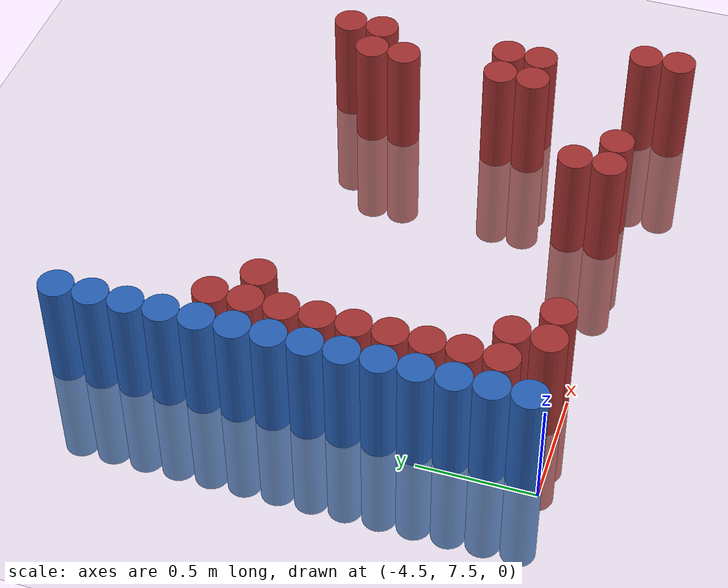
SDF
<sdf version="1.6">
 <world name="default">
  <model name="ground_plane">
   <static>1</static>
   <link name="link">
    <collision name="collision">
     <geometry><plane><normal>0 0 1</normal><size>100 100</size></plane></geometry>
     <surface><friction><ode><mu>100</mu><mu2>50</mu2></ode></friction></surface>
    </collision>
    <visual name="visual">
     <cast_shadows>0</cast_shadows>
     <geometry><plane><normal>0 0 1</normal><size>100 100</size></plane></geometry>
     <material>
      <script><uri>file://media/materials/scripts/gazebo.material</uri><name>Gazebo/Grey</name></script>
     </material>
    </visual>
   </link>
  </model>
  <model name="unit_cylinder_112">
   <static>1</static>
   <pose>-4.425000 7.575000 0.000000 0.000000 0.000000 0.000000</pose>
   <link name="link">
    <inertial>
     <mass>1</mass>
     <inertia><ixx>0.145833</ixx><ixy>0</ixy><ixz>0</ixz><iyy>0.145833</iyy><iyz>0</iyz><izz>0.125</izz></inertia>
    </inertial>
    <collision name="collision">
     <geometry><cylinder><radius>0.075000</radius><length>1</length></cylinder></geometry>
    </collision>
    <visual name="visual">
     <geometry><cylinder><radius>0.075000</radius><length>1</length></cylinder></geometry>
     <material>
      <ambient>0.152000 0.379000 0.720000 1</ambient>
      <diffuse>0.152000 0.379000 0.720000 1</diffuse>
     </material>
     <material>
      <script><name>Gazebo/Grey</name><uri>file://media/materials/scripts/gazebo.material</uri></script>
     </material>
    </visual>
    <sensor name="sensor_contact" type="contact"><contact><collision>collision</collision></contact></sensor>
   </link>
   <plugin filename="gz-sim-touchplugin-system" name="gz::sim::systems::TouchPlugin">
    <target>robot</target>
    <namespace>robot</namespace>
    <time>0.001</time>
    <enabled>true</enabled>
   </plugin>
  </model>
  <model name="unit_cylinder_113">
   <static>1</static>
   <pose>-4.425000 7.725000 0.000000 0.000000 0.000000 0.000000</pose>
   <link name="link">
    <inertial>
     <mass>1</mass>
     <inertia><ixx>0.145833</ixx><ixy>0</ixy><ixz>0</ixz><iyy>0.145833</iyy><iyz>0</iyz><izz>0.125</izz></inertia>
    </inertial>
    <collision name="collision">
     <geometry><cylinder><radius>0.075000</radius><length>1</length></cylinder></geometry>
    </collision>
    <visual name="visual">
     <geometry><cylinder><radius>0.075000</radius><length>1</length></cylinder></geometry>
     <material>
      <ambient>0.152000 0.379000 0.720000 1</ambient>
      <diffuse>0.152000 0.379000 0.720000 1</diffuse>
     </material>
     <material>
      <script><name>Gazebo/Grey</name><uri>file://media/materials/scripts/gazebo.material</uri></script>
     </material>
    </visual>
    <sensor name="sensor_contact" type="contact"><contact><collision>collision</collision></contact></sensor>
   </link>
   <plugin filename="gz-sim-touchplugin-system" name="gz::sim::systems::TouchPlugin">
    <target>robot</target>
    <namespace>robot</namespace>
    <time>0.001</time>
    <enabled>true</enabled>
   </plugin>
  </model>
  <model name="unit_cylinder_114">
   <static>1</static>
   <pose>-4.425000 7.875000 0.000000 0.000000 0.000000 0.000000</pose>
   <link name="link">
    <inertial>
     <mass>1</mass>
     <inertia><ixx>0.145833</ixx><ixy>0</ixy><ixz>0</ixz><iyy>0.145833</iyy><iyz>0</iyz><izz>0.125</izz></inertia>
    </inertial>
    <collision name="collision">
     <geometry><cylinder><radius>0.075000</radius><length>1</length></cylinder></geometry>
    </collision>
    <visual name="visual">
     <geometry><cylinder><radius>0.075000</radius><length>1</length></cylinder></geometry>
     <material>
      <ambient>0.152000 0.379000 0.720000 1</ambient>
      <diffuse>0.152000 0.379000 0.720000 1</diffuse>
     </material>
     <material>
      <script><name>Gazebo/Grey</name><uri>file://media/materials/scripts/gazebo.material</uri></script>
     </material>
    </visual>
    <sensor name="sensor_contact" type="contact"><contact><collision>collision</collision></contact></sensor>
   </link>
   <plugin filename="gz-sim-touchplugin-system" name="gz::sim::systems::TouchPlugin">
    <target>robot</target>
    <namespace>robot</namespace>
    <time>0.001</time>
    <enabled>true</enabled>
   </plugin>
  </model>
  <model name="unit_cylinder_115">
   <static>1</static>
   <pose>-4.425000 8.025000 0.000000 0.000000 0.000000 0.000000</pose>
   <link name="link">
    <inertial>
     <mass>1</mass>
     <inertia><ixx>0.145833</ixx><ixy>0</ixy><ixz>0</ixz><iyy>0.145833</iyy><iyz>0</iyz><izz>0.125</izz></inertia>
    </inertial>
    <collision name="collision">
     <geometry><cylinder><radius>0.075000</radius><length>1</length></cylinder></geometry>
    </collision>
    <visual name="visual">
     <geometry><cylinder><radius>0.075000</radius><length>1</length></cylinder></geometry>
     <material>
      <ambient>0.152000 0.379000 0.720000 1</ambient>
      <diffuse>0.152000 0.379000 0.720000 1</diffuse>
     </material>
     <material>
      <script><name>Gazebo/Grey</name><uri>file://media/materials/scripts/gazebo.material</uri></script>
     </material>
    </visual>
    <sensor name="sensor_contact" type="contact"><contact><collision>collision</collision></contact></sensor>
   </link>
   <plugin filename="gz-sim-touchplugin-system" name="gz::sim::systems::TouchPlugin">
    <target>robot</target>
    <namespace>robot</namespace>
    <time>0.001</time>
    <enabled>true</enabled>
   </plugin>
  </model>
  <model name="unit_cylinder_116">
   <static>1</static>
   <pose>-4.425000 8.175000 0.000000 0.000000 0.000000 0.000000</pose>
   <link name="link">
    <inertial>
     <mass>1</mass>
     <inertia><ixx>0.145833</ixx><ixy>0</ixy><ixz>0</ixz><iyy>0.145833</iyy><iyz>0</iyz><izz>0.125</izz></inertia>
    </inertial>
    <collision name="collision">
     <geometry><cylinder><radius>0.075000</radius><length>1</length></cylinder></geometry>
    </collision>
    <visual name="visual">
     <geometry><cylinder><radius>0.075000</radius><length>1</length></cylinder></geometry>
     <material>
      <ambient>0.152000 0.379000 0.720000 1</ambient>
      <diffuse>0.152000 0.379000 0.720000 1</diffuse>
     </material>
     <material>
      <script><name>Gazebo/Grey</name><uri>file://media/materials/scripts/gazebo.material</uri></script>
     </material>
    </visual>
    <sensor name="sensor_contact" type="contact"><contact><collision>collision</collision></contact></sensor>
   </link>
   <plugin filename="gz-sim-touchplugin-system" name="gz::sim::systems::TouchPlugin">
    <target>robot</target>
    <namespace>robot</namespace>
    <time>0.001</time>
    <enabled>true</enabled>
   </plugin>
  </model>
  <model name="unit_cylinder_117">
   <static>1</static>
   <pose>-4.425000 8.325000 0.000000 0.000000 0.000000 0.000000</pose>
   <link name="link">
    <inertial>
     <mass>1</mass>
     <inertia><ixx>0.145833</ixx><ixy>0</ixy><ixz>0</ixz><iyy>0.145833</iyy><iyz>0</iyz><izz>0.125</izz></inertia>
    </inertial>
    <collision name="collision">
     <geometry><cylinder><radius>0.075000</radius><length>1</length></cylinder></geometry>
    </collision>
    <visual name="visual">
     <geometry><cylinder><radius>0.075000</radius><length>1</length></cylinder></geometry>
     <material>
      <ambient>0.152000 0.379000 0.720000 1</ambient>
      <diffuse>0.152000 0.379000 0.720000 1</diffuse>
     </material>
     <material>
      <script><name>Gazebo/Grey</name><uri>file://media/materials/scripts/gazebo.material</uri></script>
     </material>
    </visual>
    <sensor name="sensor_contact" type="contact"><contact><collision>collision</collision></contact></sensor>
   </link>
   <plugin filename="gz-sim-touchplugin-system" name="gz::sim::systems::TouchPlugin">
    <target>robot</target>
    <namespace>robot</namespace>
    <time>0.001</time>
    <enabled>true</enabled>
   </plugin>
  </model>
  <model name="unit_cylinder_118">
   <static>1</static>
   <pose>-4.425000 8.475000 0.000000 0.000000 0.000000 0.000000</pose>
   <link name="link">
    <inertial>
     <mass>1</mass>
     <inertia><ixx>0.145833</ixx><ixy>0</ixy><ixz>0</ixz><iyy>0.145833</iyy><iyz>0</iyz><izz>0.125</izz></inertia>
    </inertial>
    <collision name="collision">
     <geometry><cylinder><radius>0.075000</radius><length>1</length></cylinder></geometry>
    </collision>
    <visual name="visual">
     <geometry><cylinder><radius>0.075000</radius><length>1</length></cylinder></geometry>
     <material>
      <ambient>0.152000 0.379000 0.720000 1</ambient>
      <diffuse>0.152000 0.379000 0.720000 1</diffuse>
     </material>
     <material>
      <script><name>Gazebo/Grey</name><uri>file://media/materials/scripts/gazebo.material</uri></script>
     </material>
    </visual>
    <sensor name="sensor_contact" type="contact"><contact><collision>collision</collision></contact></sensor>
   </link>
   <plugin filename="gz-sim-touchplugin-system" name="gz::sim::systems::TouchPlugin">
    <target>robot</target>
    <namespace>robot</namespace>
    <time>0.001</time>
    <enabled>true</enabled>
   </plugin>
  </model>
  <model name="unit_cylinder_119">
   <static>1</static>
   <pose>-4.425000 8.625000 0.000000 0.000000 0.000000 0.000000</pose>
   <link name="link">
    <inertial>
     <mass>1</mass>
     <inertia><ixx>0.145833</ixx><ixy>0</ixy><ixz>0</ixz><iyy>0.145833</iyy><iyz>0</iyz><izz>0.125</izz></inertia>
    </inertial>
    <collision name="collision">
     <geometry><cylinder><radius>0.075000</radius><length>1</length></cylinder></geometry>
    </collision>
    <visual name="visual">
     <geometry><cylinder><radius>0.075000</radius><length>1</length></cylinder></geometry>
     <material>
      <ambient>0.152000 0.379000 0.720000 1</ambient>
      <diffuse>0.152000 0.379000 0.720000 1</diffuse>
     </material>
     <material>
      <script><name>Gazebo/Grey</name><uri>file://media/materials/scripts/gazebo.material</uri></script>
     </material>
    </visual>
    <sensor name="sensor_contact" type="contact"><contact><collision>collision</collision></contact></sensor>
   </link>
   <plugin filename="gz-sim-touchplugin-system" name="gz::sim::systems::TouchPlugin">
    <target>robot</target>
    <namespace>robot</namespace>
    <time>0.001</time>
    <enabled>true</enabled>
   </plugin>
  </model>
  <model name="unit_cylinder_120">
   <static>1</static>
   <pose>-4.425000 8.775000 0.000000 0.000000 0.000000 0.000000</pose>
   <link name="link">
    <inertial>
     <mass>1</mass>
     <inertia><ixx>0.145833</ixx><ixy>0</ixy><ixz>0</ixz><iyy>0.145833</iyy><iyz>0</iyz><izz>0.125</izz></inertia>
    </inertial>
    <collision name="collision">
     <geometry><cylinder><radius>0.075000</radius><length>1</length></cylinder></geometry>
    </collision>
    <visual name="visual">
     <geometry><cylinder><radius>0.075000</radius><length>1</length></cylinder></geometry>
     <material>
      <ambient>0.152000 0.379000 0.720000 1</ambient>
      <diffuse>0.152000 0.379000 0.720000 1</diffuse>
     </material>
     <material>
      <script><name>Gazebo/Grey</name><uri>file://media/materials/scripts/gazebo.material</uri></script>
     </material>
    </visual>
    <sensor name="sensor_contact" type="contact"><contact><collision>collision</collision></contact></sensor>
   </link>
   <plugin filename="gz-sim-touchplugin-system" name="gz::sim::systems::TouchPlugin">
    <target>robot</target>
    <namespace>robot</namespace>
    <time>0.001</time>
    <enabled>true</enabled>
   </plugin>
  </model>
  <model name="unit_cylinder_121">
   <static>1</static>
   <pose>-4.425000 8.925000 0.000000 0.000000 0.000000 0.000000</pose>
   <link name="link">
    <inertial>
     <mass>1</mass>
     <inertia><ixx>0.145833</ixx><ixy>0</ixy><ixz>0</ixz><iyy>0.145833</iyy><iyz>0</iyz><izz>0.125</izz></inertia>
    </inertial>
    <collision name="collision">
     <geometry><cylinder><radius>0.075000</radius><length>1</length></cylinder></geometry>
    </collision>
    <visual name="visual">
     <geometry><cylinder><radius>0.075000</radius><length>1</length></cylinder></geometry>
     <material>
      <ambient>0.152000 0.379000 0.720000 1</ambient>
      <diffuse>0.152000 0.379000 0.720000 1</diffuse>
     </material>
     <material>
      <script><name>Gazebo/Grey</name><uri>file://media/materials/scripts/gazebo.material</uri></script>
     </material>
    </visual>
    <sensor name="sensor_contact" type="contact"><contact><collision>collision</collision></contact></sensor>
   </link>
   <plugin filename="gz-sim-touchplugin-system" name="gz::sim::systems::TouchPlugin">
    <target>robot</target>
    <namespace>robot</namespace>
    <time>0.001</time>
    <enabled>true</enabled>
   </plugin>
  </model>
  <model name="unit_cylinder_122">
   <static>1</static>
   <pose>-4.425000 9.075000 0.000000 0.000000 0.000000 0.000000</pose>
   <link name="link">
    <inertial>
     <mass>1</mass>
     <inertia><ixx>0.145833</ixx><ixy>0</ixy><ixz>0</ixz><iyy>0.145833</iyy><iyz>0</iyz><izz>0.125</izz></inertia>
    </inertial>
    <collision name="collision">
     <geometry><cylinder><radius>0.075000</radius><length>1</length></cylinder></geometry>
    </collision>
    <visual name="visual">
     <geometry><cylinder><radius>0.075000</radius><length>1</length></cylinder></geometry>
     <material>
      <ambient>0.152000 0.379000 0.720000 1</ambient>
      <diffuse>0.152000 0.379000 0.720000 1</diffuse>
     </material>
     <material>
      <script><name>Gazebo/Grey</name><uri>file://media/materials/scripts/gazebo.material</uri></script>
     </material>
    </visual>
    <sensor name="sensor_contact" type="contact"><contact><collision>collision</collision></contact></sensor>
   </link>
   <plugin filename="gz-sim-touchplugin-system" name="gz::sim::systems::TouchPlugin">
    <target>robot</target>
    <namespace>robot</namespace>
    <time>0.001</time>
    <enabled>true</enabled>
   </plugin>
  </model>
  <model name="unit_cylinder_123">
   <static>1</static>
   <pose>-4.425000 9.225000 0.000000 0.000000 0.000000 0.000000</pose>
   <link name="link">
    <inertial>
     <mass>1</mass>
     <inertia><ixx>0.145833</ixx><ixy>0</ixy><ixz>0</ixz><iyy>0.145833</iyy><iyz>0</iyz><izz>0.125</izz></inertia>
    </inertial>
    <collision name="collision">
     <geometry><cylinder><radius>0.075000</radius><length>1</length></cylinder></geometry>
    </collision>
    <visual name="visual">
     <geometry><cylinder><radius>0.075000</radius><length>1</length></cylinder></geometry>
     <material>
      <ambient>0.152000 0.379000 0.720000 1</ambient>
      <diffuse>0.152000 0.379000 0.720000 1</diffuse>
     </material>
     <material>
      <script><name>Gazebo/Grey</name><uri>file://media/materials/scripts/gazebo.material</uri></script>
     </material>
    </visual>
    <sensor name="sensor_contact" type="contact"><contact><collision>collision</collision></contact></sensor>
   </link>
   <plugin filename="gz-sim-touchplugin-system" name="gz::sim::systems::TouchPlugin">
    <target>robot</target>
    <namespace>robot</namespace>
    <time>0.001</time>
    <enabled>true</enabled>
   </plugin>
  </model>
  <model name="unit_cylinder_124">
   <static>1</static>
   <pose>-4.425000 9.375000 0.000000 0.000000 0.000000 0.000000</pose>
   <link name="link">
    <inertial>
     <mass>1</mass>
     <inertia><ixx>0.145833</ixx><ixy>0</ixy><ixz>0</ixz><iyy>0.145833</iyy><iyz>0</iyz><izz>0.125</izz></inertia>
    </inertial>
    <collision name="collision">
     <geometry><cylinder><radius>0.075000</radius><length>1</length></cylinder></geometry>
    </collision>
    <visual name="visual">
     <geometry><cylinder><radius>0.075000</radius><length>1</length></cylinder></geometry>
     <material>
      <ambient>0.152000 0.379000 0.720000 1</ambient>
      <diffuse>0.152000 0.379000 0.720000 1</diffuse>
     </material>
     <material>
      <script><name>Gazebo/Grey</name><uri>file://media/materials/scripts/gazebo.material</uri></script>
     </material>
    </visual>
    <sensor name="sensor_contact" type="contact"><contact><collision>collision</collision></contact></sensor>
   </link>
   <plugin filename="gz-sim-touchplugin-system" name="gz::sim::systems::TouchPlugin">
    <target>robot</target>
    <namespace>robot</namespace>
    <time>0.001</time>
    <enabled>true</enabled>
   </plugin>
  </model>
  <model name="unit_cylinder_125">
   <static>1</static>
   <pose>-4.425000 9.525000 0.000000 0.000000 0.000000 0.000000</pose>
   <link name="link">
    <inertial>
     <mass>1</mass>
     <inertia><ixx>0.145833</ixx><ixy>0</ixy><ixz>0</ixz><iyy>0.145833</iyy><iyz>0</iyz><izz>0.125</izz></inertia>
    </inertial>
    <collision name="collision">
     <geometry><cylinder><radius>0.075000</radius><length>1</length></cylinder></geometry>
    </collision>
    <visual name="visual">
     <geometry><cylinder><radius>0.075000</radius><length>1</length></cylinder></geometry>
     <material>
      <ambient>0.152000 0.379000 0.720000 1</ambient>
      <diffuse>0.152000 0.379000 0.720000 1</diffuse>
     </material>
     <material>
      <script><name>Gazebo/Grey</name><uri>file://media/materials/scripts/gazebo.material</uri></script>
     </material>
    </visual>
    <sensor name="sensor_contact" type="contact"><contact><collision>collision</collision></contact></sensor>
   </link>
   <plugin filename="gz-sim-touchplugin-system" name="gz::sim::systems::TouchPlugin">
    <target>robot</target>
    <namespace>robot</namespace>
    <time>0.001</time>
    <enabled>true</enabled>
   </plugin>
  </model>
  <model name="unit_cylinder_133">
   <static>1</static>
   <pose>-4.275000 7.725000 0.000000 0.000000 0.000000 0.000000</pose>
   <link name="link">
    <inertial>
     <mass>1</mass>
     <inertia><ixx>0.145833</ixx><ixy>0</ixy><ixz>0</ixz><iyy>0.145833</iyy><iyz>0</iyz><izz>0.125</izz></inertia>
    </inertial>
    <collision name="collision">
     <geometry><cylinder><radius>0.075000</radius><length>1</length></cylinder></geometry>
    </collision>
    <visual name="visual">
     <geometry><cylinder><radius>0.075000</radius><length>1</length></cylinder></geometry>
     <material>
      <ambient>0.648000 0.192000 0.192000 1</ambient>
      <diffuse>0.648000 0.192000 0.192000 1</diffuse>
     </material>
     <material>
      <script><name>Gazebo/Grey</name><uri>file://media/materials/scripts/gazebo.material</uri></script>
     </material>
    </visual>
    <sensor name="sensor_contact" type="contact"><contact><collision>collision</collision></contact></sensor>
   </link>
   <plugin filename="gz-sim-touchplugin-system" name="gz::sim::systems::TouchPlugin">
    <target>robot</target>
    <namespace>robot</namespace>
    <time>0.001</time>
    <enabled>true</enabled>
   </plugin>
  </model>
  <model name="unit_cylinder_134">
   <static>1</static>
   <pose>-4.275000 7.875000 0.000000 0.000000 0.000000 0.000000</pose>
   <link name="link">
    <inertial>
     <mass>1</mass>
     <inertia><ixx>0.145833</ixx><ixy>0</ixy><ixz>0</ixz><iyy>0.145833</iyy><iyz>0</iyz><izz>0.125</izz></inertia>
    </inertial>
    <collision name="collision">
     <geometry><cylinder><radius>0.075000</radius><length>1</length></cylinder></geometry>
    </collision>
    <visual name="visual">
     <geometry><cylinder><radius>0.075000</radius><length>1</length></cylinder></geometry>
     <material>
      <ambient>0.648000 0.192000 0.192000 1</ambient>
      <diffuse>0.648000 0.192000 0.192000 1</diffuse>
     </material>
     <material>
      <script><name>Gazebo/Grey</name><uri>file://media/materials/scripts/gazebo.material</uri></script>
     </material>
    </visual>
    <sensor name="sensor_contact" type="contact"><contact><collision>collision</collision></contact></sensor>
   </link>
   <plugin filename="gz-sim-touchplugin-system" name="gz::sim::systems::TouchPlugin">
    <target>robot</target>
    <namespace>robot</namespace>
    <time>0.001</time>
    <enabled>true</enabled>
   </plugin>
  </model>
  <model name="unit_cylinder_135">
   <static>1</static>
   <pose>-4.275000 8.025000 0.000000 0.000000 0.000000 0.000000</pose>
   <link name="link">
    <inertial>
     <mass>1</mass>
     <inertia><ixx>0.145833</ixx><ixy>0</ixy><ixz>0</ixz><iyy>0.145833</iyy><iyz>0</iyz><izz>0.125</izz></inertia>
    </inertial>
    <collision name="collision">
     <geometry><cylinder><radius>0.075000</radius><length>1</length></cylinder></geometry>
    </collision>
    <visual name="visual">
     <geometry><cylinder><radius>0.075000</radius><length>1</length></cylinder></geometry>
     <material>
      <ambient>0.648000 0.192000 0.192000 1</ambient>
      <diffuse>0.648000 0.192000 0.192000 1</diffuse>
     </material>
     <material>
      <script><name>Gazebo/Grey</name><uri>file://media/materials/scripts/gazebo.material</uri></script>
     </material>
    </visual>
    <sensor name="sensor_contact" type="contact"><contact><collision>collision</collision></contact></sensor>
   </link>
   <plugin filename="gz-sim-touchplugin-system" name="gz::sim::systems::TouchPlugin">
    <target>robot</target>
    <namespace>robot</namespace>
    <time>0.001</time>
    <enabled>true</enabled>
   </plugin>
  </model>
  <model name="unit_cylinder_136">
   <static>1</static>
   <pose>-4.275000 8.175000 0.000000 0.000000 0.000000 0.000000</pose>
   <link name="link">
    <inertial>
     <mass>1</mass>
     <inertia><ixx>0.145833</ixx><ixy>0</ixy><ixz>0</ixz><iyy>0.145833</iyy><iyz>0</iyz><izz>0.125</izz></inertia>
    </inertial>
    <collision name="collision">
     <geometry><cylinder><radius>0.075000</radius><length>1</length></cylinder></geometry>
    </collision>
    <visual name="visual">
     <geometry><cylinder><radius>0.075000</radius><length>1</length></cylinder></geometry>
     <material>
      <ambient>0.648000 0.192000 0.192000 1</ambient>
      <diffuse>0.648000 0.192000 0.192000 1</diffuse>
     </material>
     <material>
      <script><name>Gazebo/Grey</name><uri>file://media/materials/scripts/gazebo.material</uri></script>
     </material>
    </visual>
    <sensor name="sensor_contact" type="contact"><contact><collision>collision</collision></contact></sensor>
   </link>
   <plugin filename="gz-sim-touchplugin-system" name="gz::sim::systems::TouchPlugin">
    <target>robot</target>
    <namespace>robot</namespace>
    <time>0.001</time>
    <enabled>true</enabled>
   </plugin>
  </model>
  <model name="unit_cylinder_137">
   <static>1</static>
   <pose>-4.275000 8.325000 0.000000 0.000000 0.000000 0.000000</pose>
   <link name="link">
    <inertial>
     <mass>1</mass>
     <inertia><ixx>0.145833</ixx><ixy>0</ixy><ixz>0</ixz><iyy>0.145833</iyy><iyz>0</iyz><izz>0.125</izz></inertia>
    </inertial>
    <collision name="collision">
     <geometry><cylinder><radius>0.075000</radius><length>1</length></cylinder></geometry>
    </collision>
    <visual name="visual">
     <geometry><cylinder><radius>0.075000</radius><length>1</length></cylinder></geometry>
     <material>
      <ambient>0.648000 0.192000 0.192000 1</ambient>
      <diffuse>0.648000 0.192000 0.192000 1</diffuse>
     </material>
     <material>
      <script><name>Gazebo/Grey</name><uri>file://media/materials/scripts/gazebo.material</uri></script>
     </material>
    </visual>
    <sensor name="sensor_contact" type="contact"><contact><collision>collision</collision></contact></sensor>
   </link>
   <plugin filename="gz-sim-touchplugin-system" name="gz::sim::systems::TouchPlugin">
    <target>robot</target>
    <namespace>robot</namespace>
    <time>0.001</time>
    <enabled>true</enabled>
   </plugin>
  </model>
  <model name="unit_cylinder_138">
   <static>1</static>
   <pose>-4.275000 8.475000 0.000000 0.000000 0.000000 0.000000</pose>
   <link name="link">
    <inertial>
     <mass>1</mass>
     <inertia><ixx>0.145833</ixx><ixy>0</ixy><ixz>0</ixz><iyy>0.145833</iyy><iyz>0</iyz><izz>0.125</izz></inertia>
    </inertial>
    <collision name="collision">
     <geometry><cylinder><radius>0.075000</radius><length>1</length></cylinder></geometry>
    </collision>
    <visual name="visual">
     <geometry><cylinder><radius>0.075000</radius><length>1</length></cylinder></geometry>
     <material>
      <ambient>0.648000 0.192000 0.192000 1</ambient>
      <diffuse>0.648000 0.192000 0.192000 1</diffuse>
     </material>
     <material>
      <script><name>Gazebo/Grey</name><uri>file://media/materials/scripts/gazebo.material</uri></script>
     </material>
    </visual>
    <sensor name="sensor_contact" type="contact"><contact><collision>collision</collision></contact></sensor>
   </link>
   <plugin filename="gz-sim-touchplugin-system" name="gz::sim::systems::TouchPlugin">
    <target>robot</target>
    <namespace>robot</namespace>
    <time>0.001</time>
    <enabled>true</enabled>
   </plugin>
  </model>
  <model name="unit_cylinder_139">
   <static>1</static>
   <pose>-4.275000 8.625000 0.000000 0.000000 0.000000 0.000000</pose>
   <link name="link">
    <inertial>
     <mass>1</mass>
     <inertia><ixx>0.145833</ixx><ixy>0</ixy><ixz>0</ixz><iyy>0.145833</iyy><iyz>0</iyz><izz>0.125</izz></inertia>
    </inertial>
    <collision name="collision">
     <geometry><cylinder><radius>0.075000</radius><length>1</length></cylinder></geometry>
    </collision>
    <visual name="visual">
     <geometry><cylinder><radius>0.075000</radius><length>1</length></cylinder></geometry>
     <material>
      <ambient>0.648000 0.192000 0.192000 1</ambient>
      <diffuse>0.648000 0.192000 0.192000 1</diffuse>
     </material>
     <material>
      <script><name>Gazebo/Grey</name><uri>file://media/materials/scripts/gazebo.material</uri></script>
     </material>
    </visual>
    <sensor name="sensor_contact" type="contact"><contact><collision>collision</collision></contact></sensor>
   </link>
   <plugin filename="gz-sim-touchplugin-system" name="gz::sim::systems::TouchPlugin">
    <target>robot</target>
    <namespace>robot</namespace>
    <time>0.001</time>
    <enabled>true</enabled>
   </plugin>
  </model>
  <model name="unit_cylinder_140">
   <static>1</static>
   <pose>-4.275000 8.775000 0.000000 0.000000 0.000000 0.000000</pose>
   <link name="link">
    <inertial>
     <mass>1</mass>
     <inertia><ixx>0.145833</ixx><ixy>0</ixy><ixz>0</ixz><iyy>0.145833</iyy><iyz>0</iyz><izz>0.125</izz></inertia>
    </inertial>
    <collision name="collision">
     <geometry><cylinder><radius>0.075000</radius><length>1</length></cylinder></geometry>
    </collision>
    <visual name="visual">
     <geometry><cylinder><radius>0.075000</radius><length>1</length></cylinder></geometry>
     <material>
      <ambient>0.648000 0.192000 0.192000 1</ambient>
      <diffuse>0.648000 0.192000 0.192000 1</diffuse>
     </material>
     <material>
      <script><name>Gazebo/Grey</name><uri>file://media/materials/scripts/gazebo.material</uri></script>
     </material>
    </visual>
    <sensor name="sensor_contact" type="contact"><contact><collision>collision</collision></contact></sensor>
   </link>
   <plugin filename="gz-sim-touchplugin-system" name="gz::sim::systems::TouchPlugin">
    <target>robot</target>
    <namespace>robot</namespace>
    <time>0.001</time>
    <enabled>true</enabled>
   </plugin>
  </model>
  <model name="unit_cylinder_141">
   <static>1</static>
   <pose>-4.275000 8.925000 0.000000 0.000000 0.000000 0.000000</pose>
   <link name="link">
    <inertial>
     <mass>1</mass>
     <inertia><ixx>0.145833</ixx><ixy>0</ixy><ixz>0</ixz><iyy>0.145833</iyy><iyz>0</iyz><izz>0.125</izz></inertia>
    </inertial>
    <collision name="collision">
     <geometry><cylinder><radius>0.075000</radius><length>1</length></cylinder></geometry>
    </collision>
    <visual name="visual">
     <geometry><cylinder><radius>0.075000</radius><length>1</length></cylinder></geometry>
     <material>
      <ambient>0.648000 0.192000 0.192000 1</ambient>
      <diffuse>0.648000 0.192000 0.192000 1</diffuse>
     </material>
     <material>
      <script><name>Gazebo/Grey</name><uri>file://media/materials/scripts/gazebo.material</uri></script>
     </material>
    </visual>
    <sensor name="sensor_contact" type="contact"><contact><collision>collision</collision></contact></sensor>
   </link>
   <plugin filename="gz-sim-touchplugin-system" name="gz::sim::systems::TouchPlugin">
    <target>robot</target>
    <namespace>robot</namespace>
    <time>0.001</time>
    <enabled>true</enabled>
   </plugin>
  </model>
  <model name="unit_cylinder_149">
   <static>1</static>
   <pose>-4.125000 7.575000 0.000000 0.000000 0.000000 0.000000</pose>
   <link name="link">
    <inertial>
     <mass>1</mass>
     <inertia><ixx>0.145833</ixx><ixy>0</ixy><ixz>0</ixz><iyy>0.145833</iyy><iyz>0</iyz><izz>0.125</izz></inertia>
    </inertial>
    <collision name="collision">
     <geometry><cylinder><radius>0.075000</radius><length>1</length></cylinder></geometry>
    </collision>
    <visual name="visual">
     <geometry><cylinder><radius>0.075000</radius><length>1</length></cylinder></geometry>
     <material>
      <ambient>0.648000 0.192000 0.192000 1</ambient>
      <diffuse>0.648000 0.192000 0.192000 1</diffuse>
     </material>
     <material>
      <script><name>Gazebo/Grey</name><uri>file://media/materials/scripts/gazebo.material</uri></script>
     </material>
    </visual>
    <sensor name="sensor_contact" type="contact"><contact><collision>collision</collision></contact></sensor>
   </link>
   <plugin filename="gz-sim-touchplugin-system" name="gz::sim::systems::TouchPlugin">
    <target>robot</target>
    <namespace>robot</namespace>
    <time>0.001</time>
    <enabled>true</enabled>
   </plugin>
  </model>
  <model name="unit_cylinder_150">
   <static>1</static>
   <pose>-4.125000 7.725000 0.000000 0.000000 0.000000 0.000000</pose>
   <link name="link">
    <inertial>
     <mass>1</mass>
     <inertia><ixx>0.145833</ixx><ixy>0</ixy><ixz>0</ixz><iyy>0.145833</iyy><iyz>0</iyz><izz>0.125</izz></inertia>
    </inertial>
    <collision name="collision">
     <geometry><cylinder><radius>0.075000</radius><length>1</length></cylinder></geometry>
    </collision>
    <visual name="visual">
     <geometry><cylinder><radius>0.075000</radius><length>1</length></cylinder></geometry>
     <material>
      <ambient>0.648000 0.192000 0.192000 1</ambient>
      <diffuse>0.648000 0.192000 0.192000 1</diffuse>
     </material>
     <material>
      <script><name>Gazebo/Grey</name><uri>file://media/materials/scripts/gazebo.material</uri></script>
     </material>
    </visual>
    <sensor name="sensor_contact" type="contact"><contact><collision>collision</collision></contact></sensor>
   </link>
   <plugin filename="gz-sim-touchplugin-system" name="gz::sim::systems::TouchPlugin">
    <target>robot</target>
    <namespace>robot</namespace>
    <time>0.001</time>
    <enabled>true</enabled>
   </plugin>
  </model>
  <model name="unit_cylinder_151">
   <static>1</static>
   <pose>-4.125000 8.775000 0.000000 0.000000 0.000000 0.000000</pose>
   <link name="link">
    <inertial>
     <mass>1</mass>
     <inertia><ixx>0.145833</ixx><ixy>0</ixy><ixz>0</ixz><iyy>0.145833</iyy><iyz>0</iyz><izz>0.125</izz></inertia>
    </inertial>
    <collision name="collision">
     <geometry><cylinder><radius>0.075000</radius><length>1</length></cylinder></geometry>
    </collision>
    <visual name="visual">
     <geometry><cylinder><radius>0.075000</radius><length>1</length></cylinder></geometry>
     <material>
      <ambient>0.648000 0.192000 0.192000 1</ambient>
      <diffuse>0.648000 0.192000 0.192000 1</diffuse>
     </material>
     <material>
      <script><name>Gazebo/Grey</name><uri>file://media/materials/scripts/gazebo.material</uri></script>
     </material>
    </visual>
    <sensor name="sensor_contact" type="contact"><contact><collision>collision</collision></contact></sensor>
   </link>
   <plugin filename="gz-sim-touchplugin-system" name="gz::sim::systems::TouchPlugin">
    <target>robot</target>
    <namespace>robot</namespace>
    <time>0.001</time>
    <enabled>true</enabled>
   </plugin>
  </model>
  <model name="unit_cylinder_157">
   <static>1</static>
   <pose>-3.975000 7.575000 0.000000 0.000000 0.000000 0.000000</pose>
   <link name="link">
    <inertial>
     <mass>1</mass>
     <inertia><ixx>0.145833</ixx><ixy>0</ixy><ixz>0</ixz><iyy>0.145833</iyy><iyz>0</iyz><izz>0.125</izz></inertia>
    </inertial>
    <collision name="collision">
     <geometry><cylinder><radius>0.075000</radius><length>1</length></cylinder></geometry>
    </collision>
    <visual name="visual">
     <geometry><cylinder><radius>0.075000</radius><length>1</length></cylinder></geometry>
     <material>
      <ambient>0.648000 0.192000 0.192000 1</ambient>
      <diffuse>0.648000 0.192000 0.192000 1</diffuse>
     </material>
     <material>
      <script><name>Gazebo/Grey</name><uri>file://media/materials/scripts/gazebo.material</uri></script>
     </material>
    </visual>
    <sensor name="sensor_contact" type="contact"><contact><collision>collision</collision></contact></sensor>
   </link>
   <plugin filename="gz-sim-touchplugin-system" name="gz::sim::systems::TouchPlugin">
    <target>robot</target>
    <namespace>robot</namespace>
    <time>0.001</time>
    <enabled>true</enabled>
   </plugin>
  </model>
  <model name="unit_cylinder_174">
   <static>1</static>
   <pose>-3.075000 7.575000 0.000000 0.000000 0.000000 0.000000</pose>
   <link name="link">
    <inertial>
     <mass>1</mass>
     <inertia><ixx>0.145833</ixx><ixy>0</ixy><ixz>0</ixz><iyy>0.145833</iyy><iyz>0</iyz><izz>0.125</izz></inertia>
    </inertial>
    <collision name="collision">
     <geometry><cylinder><radius>0.075000</radius><length>1</length></cylinder></geometry>
    </collision>
    <visual name="visual">
     <geometry><cylinder><radius>0.075000</radius><length>1</length></cylinder></geometry>
     <material>
      <ambient>0.648000 0.192000 0.192000 1</ambient>
      <diffuse>0.648000 0.192000 0.192000 1</diffuse>
     </material>
     <material>
      <script><name>Gazebo/Grey</name><uri>file://media/materials/scripts/gazebo.material</uri></script>
     </material>
    </visual>
    <sensor name="sensor_contact" type="contact"><contact><collision>collision</collision></contact></sensor>
   </link>
   <plugin filename="gz-sim-touchplugin-system" name="gz::sim::systems::TouchPlugin">
    <target>robot</target>
    <namespace>robot</namespace>
    <time>0.001</time>
    <enabled>true</enabled>
   </plugin>
  </model>
  <model name="unit_cylinder_175">
   <static>1</static>
   <pose>-3.075000 7.725000 0.000000 0.000000 0.000000 0.000000</pose>
   <link name="link">
    <inertial>
     <mass>1</mass>
     <inertia><ixx>0.145833</ixx><ixy>0</ixy><ixz>0</ixz><iyy>0.145833</iyy><iyz>0</iyz><izz>0.125</izz></inertia>
    </inertial>
    <collision name="collision">
     <geometry><cylinder><radius>0.075000</radius><length>1</length></cylinder></geometry>
    </collision>
    <visual name="visual">
     <geometry><cylinder><radius>0.075000</radius><length>1</length></cylinder></geometry>
     <material>
      <ambient>0.648000 0.192000 0.192000 1</ambient>
      <diffuse>0.648000 0.192000 0.192000 1</diffuse>
     </material>
     <material>
      <script><name>Gazebo/Grey</name><uri>file://media/materials/scripts/gazebo.material</uri></script>
     </material>
    </visual>
    <sensor name="sensor_contact" type="contact"><contact><collision>collision</collision></contact></sensor>
   </link>
   <plugin filename="gz-sim-touchplugin-system" name="gz::sim::systems::TouchPlugin">
    <target>robot</target>
    <namespace>robot</namespace>
    <time>0.001</time>
    <enabled>true</enabled>
   </plugin>
  </model>
  <model name="unit_cylinder_176">
   <static>1</static>
   <pose>-2.925000 7.575000 0.000000 0.000000 0.000000 0.000000</pose>
   <link name="link">
    <inertial>
     <mass>1</mass>
     <inertia><ixx>0.145833</ixx><ixy>0</ixy><ixz>0</ixz><iyy>0.145833</iyy><iyz>0</iyz><izz>0.125</izz></inertia>
    </inertial>
    <collision name="collision">
     <geometry><cylinder><radius>0.075000</radius><length>1</length></cylinder></geometry>
    </collision>
    <visual name="visual">
     <geometry><cylinder><radius>0.075000</radius><length>1</length></cylinder></geometry>
     <material>
      <ambient>0.648000 0.192000 0.192000 1</ambient>
      <diffuse>0.648000 0.192000 0.192000 1</diffuse>
     </material>
     <material>
      <script><name>Gazebo/Grey</name><uri>file://media/materials/scripts/gazebo.material</uri></script>
     </material>
    </visual>
    <sensor name="sensor_contact" type="contact"><contact><collision>collision</collision></contact></sensor>
   </link>
   <plugin filename="gz-sim-touchplugin-system" name="gz::sim::systems::TouchPlugin">
    <target>robot</target>
    <namespace>robot</namespace>
    <time>0.001</time>
    <enabled>true</enabled>
   </plugin>
  </model>
  <model name="unit_cylinder_178">
   <static>1</static>
   <pose>-2.625000 8.025000 0.000000 0.000000 0.000000 0.000000</pose>
   <link name="link">
    <inertial>
     <mass>1</mass>
     <inertia><ixx>0.145833</ixx><ixy>0</ixy><ixz>0</ixz><iyy>0.145833</iyy><iyz>0</iyz><izz>0.125</izz></inertia>
    </inertial>
    <collision name="collision">
     <geometry><cylinder><radius>0.075000</radius><length>1</length></cylinder></geometry>
    </collision>
    <visual name="visual">
     <geometry><cylinder><radius>0.075000</radius><length>1</length></cylinder></geometry>
     <material>
      <ambient>0.648000 0.192000 0.192000 1</ambient>
      <diffuse>0.648000 0.192000 0.192000 1</diffuse>
     </material>
     <material>
      <script><name>Gazebo/Grey</name><uri>file://media/materials/scripts/gazebo.material</uri></script>
     </material>
    </visual>
    <sensor name="sensor_contact" type="contact"><contact><collision>collision</collision></contact></sensor>
   </link>
   <plugin filename="gz-sim-touchplugin-system" name="gz::sim::systems::TouchPlugin">
    <target>robot</target>
    <namespace>robot</namespace>
    <time>0.001</time>
    <enabled>true</enabled>
   </plugin>
  </model>
  <model name="unit_cylinder_179">
   <static>1</static>
   <pose>-2.625000 8.175000 0.000000 0.000000 0.000000 0.000000</pose>
   <link name="link">
    <inertial>
     <mass>1</mass>
     <inertia><ixx>0.145833</ixx><ixy>0</ixy><ixz>0</ixz><iyy>0.145833</iyy><iyz>0</iyz><izz>0.125</izz></inertia>
    </inertial>
    <collision name="collision">
     <geometry><cylinder><radius>0.075000</radius><length>1</length></cylinder></geometry>
    </collision>
    <visual name="visual">
     <geometry><cylinder><radius>0.075000</radius><length>1</length></cylinder></geometry>
     <material>
      <ambient>0.648000 0.192000 0.192000 1</ambient>
      <diffuse>0.648000 0.192000 0.192000 1</diffuse>
     </material>
     <material>
      <script><name>Gazebo/Grey</name><uri>file://media/materials/scripts/gazebo.material</uri></script>
     </material>
    </visual>
    <sensor name="sensor_contact" type="contact"><contact><collision>collision</collision></contact></sensor>
   </link>
   <plugin filename="gz-sim-touchplugin-system" name="gz::sim::systems::TouchPlugin">
    <target>robot</target>
    <namespace>robot</namespace>
    <time>0.001</time>
    <enabled>true</enabled>
   </plugin>
  </model>
  <model name="unit_cylinder_180">
   <static>1</static>
   <pose>-2.625000 8.625000 0.000000 0.000000 0.000000 0.000000</pose>
   <link name="link">
    <inertial>
     <mass>1</mass>
     <inertia><ixx>0.145833</ixx><ixy>0</ixy><ixz>0</ixz><iyy>0.145833</iyy><iyz>0</iyz><izz>0.125</izz></inertia>
    </inertial>
    <collision name="collision">
     <geometry><cylinder><radius>0.075000</radius><length>1</length></cylinder></geometry>
    </collision>
    <visual name="visual">
     <geometry><cylinder><radius>0.075000</radius><length>1</length></cylinder></geometry>
     <material>
      <ambient>0.648000 0.192000 0.192000 1</ambient>
      <diffuse>0.648000 0.192000 0.192000 1</diffuse>
     </material>
     <material>
      <script><name>Gazebo/Grey</name><uri>file://media/materials/scripts/gazebo.material</uri></script>
     </material>
    </visual>
    <sensor name="sensor_contact" type="contact"><contact><collision>collision</collision></contact></sensor>
   </link>
   <plugin filename="gz-sim-touchplugin-system" name="gz::sim::systems::TouchPlugin">
    <target>robot</target>
    <namespace>robot</namespace>
    <time>0.001</time>
    <enabled>true</enabled>
   </plugin>
  </model>
  <model name="unit_cylinder_181">
   <static>1</static>
   <pose>-2.625000 8.775000 0.000000 0.000000 0.000000 0.000000</pose>
   <link name="link">
    <inertial>
     <mass>1</mass>
     <inertia><ixx>0.145833</ixx><ixy>0</ixy><ixz>0</ixz><iyy>0.145833</iyy><iyz>0</iyz><izz>0.125</izz></inertia>
    </inertial>
    <collision name="collision">
     <geometry><cylinder><radius>0.075000</radius><length>1</length></cylinder></geometry>
    </collision>
    <visual name="visual">
     <geometry><cylinder><radius>0.075000</radius><length>1</length></cylinder></geometry>
     <material>
      <ambient>0.648000 0.192000 0.192000 1</ambient>
      <diffuse>0.648000 0.192000 0.192000 1</diffuse>
     </material>
     <material>
      <script><name>Gazebo/Grey</name><uri>file://media/materials/scripts/gazebo.material</uri></script>
     </material>
    </visual>
    <sensor name="sensor_contact" type="contact"><contact><collision>collision</collision></contact></sensor>
   </link>
   <plugin filename="gz-sim-touchplugin-system" name="gz::sim::systems::TouchPlugin">
    <target>robot</target>
    <namespace>robot</namespace>
    <time>0.001</time>
    <enabled>true</enabled>
   </plugin>
  </model>
  <model name="unit_cylinder_184">
   <static>1</static>
   <pose>-2.475000 8.025000 0.000000 0.000000 0.000000 0.000000</pose>
   <link name="link">
    <inertial>
     <mass>1</mass>
     <inertia><ixx>0.145833</ixx><ixy>0</ixy><ixz>0</ixz><iyy>0.145833</iyy><iyz>0</iyz><izz>0.125</izz></inertia>
    </inertial>
    <collision name="collision">
     <geometry><cylinder><radius>0.075000</radius><length>1</length></cylinder></geometry>
    </collision>
    <visual name="visual">
     <geometry><cylinder><radius>0.075000</radius><length>1</length></cylinder></geometry>
     <material>
      <ambient>0.648000 0.192000 0.192000 1</ambient>
      <diffuse>0.648000 0.192000 0.192000 1</diffuse>
     </material>
     <material>
      <script><name>Gazebo/Grey</name><uri>file://media/materials/scripts/gazebo.material</uri></script>
     </material>
    </visual>
    <sensor name="sensor_contact" type="contact"><contact><collision>collision</collision></contact></sensor>
   </link>
   <plugin filename="gz-sim-touchplugin-system" name="gz::sim::systems::TouchPlugin">
    <target>robot</target>
    <namespace>robot</namespace>
    <time>0.001</time>
    <enabled>true</enabled>
   </plugin>
  </model>
  <model name="unit_cylinder_185">
   <static>1</static>
   <pose>-2.475000 8.175000 0.000000 0.000000 0.000000 0.000000</pose>
   <link name="link">
    <inertial>
     <mass>1</mass>
     <inertia><ixx>0.145833</ixx><ixy>0</ixy><ixz>0</ixz><iyy>0.145833</iyy><iyz>0</iyz><izz>0.125</izz></inertia>
    </inertial>
    <collision name="collision">
     <geometry><cylinder><radius>0.075000</radius><length>1</length></cylinder></geometry>
    </collision>
    <visual name="visual">
     <geometry><cylinder><radius>0.075000</radius><length>1</length></cylinder></geometry>
     <material>
      <ambient>0.648000 0.192000 0.192000 1</ambient>
      <diffuse>0.648000 0.192000 0.192000 1</diffuse>
     </material>
     <material>
      <script><name>Gazebo/Grey</name><uri>file://media/materials/scripts/gazebo.material</uri></script>
     </material>
    </visual>
    <sensor name="sensor_contact" type="contact"><contact><collision>collision</collision></contact></sensor>
   </link>
   <plugin filename="gz-sim-touchplugin-system" name="gz::sim::systems::TouchPlugin">
    <target>robot</target>
    <namespace>robot</namespace>
    <time>0.001</time>
    <enabled>true</enabled>
   </plugin>
  </model>
  <model name="unit_cylinder_186">
   <static>1</static>
   <pose>-2.475000 8.775000 0.000000 0.000000 0.000000 0.000000</pose>
   <link name="link">
    <inertial>
     <mass>1</mass>
     <inertia><ixx>0.145833</ixx><ixy>0</ixy><ixz>0</ixz><iyy>0.145833</iyy><iyz>0</iyz><izz>0.125</izz></inertia>
    </inertial>
    <collision name="collision">
     <geometry><cylinder><radius>0.075000</radius><length>1</length></cylinder></geometry>
    </collision>
    <visual name="visual">
     <geometry><cylinder><radius>0.075000</radius><length>1</length></cylinder></geometry>
     <material>
      <ambient>0.648000 0.192000 0.192000 1</ambient>
      <diffuse>0.648000 0.192000 0.192000 1</diffuse>
     </material>
     <material>
      <script><name>Gazebo/Grey</name><uri>file://media/materials/scripts/gazebo.material</uri></script>
     </material>
    </visual>
    <sensor name="sensor_contact" type="contact"><contact><collision>collision</collision></contact></sensor>
   </link>
   <plugin filename="gz-sim-touchplugin-system" name="gz::sim::systems::TouchPlugin">
    <target>robot</target>
    <namespace>robot</namespace>
    <time>0.001</time>
    <enabled>true</enabled>
   </plugin>
  </model>
  <model name="unit_cylinder_187">
   <static>1</static>
   <pose>-2.475000 8.925000 0.000000 0.000000 0.000000 0.000000</pose>
   <link name="link">
    <inertial>
     <mass>1</mass>
     <inertia><ixx>0.145833</ixx><ixy>0</ixy><ixz>0</ixz><iyy>0.145833</iyy><iyz>0</iyz><izz>0.125</izz></inertia>
    </inertial>
    <collision name="collision">
     <geometry><cylinder><radius>0.075000</radius><length>1</length></cylinder></geometry>
    </collision>
    <visual name="visual">
     <geometry><cylinder><radius>0.075000</radius><length>1</length></cylinder></geometry>
     <material>
      <ambient>0.648000 0.192000 0.192000 1</ambient>
      <diffuse>0.648000 0.192000 0.192000 1</diffuse>
     </material>
     <material>
      <script><name>Gazebo/Grey</name><uri>file://media/materials/scripts/gazebo.material</uri></script>
     </material>
    </visual>
    <sensor name="sensor_contact" type="contact"><contact><collision>collision</collision></contact></sensor>
   </link>
   <plugin filename="gz-sim-touchplugin-system" name="gz::sim::systems::TouchPlugin">
    <target>robot</target>
    <namespace>robot</namespace>
    <time>0.001</time>
    <enabled>true</enabled>
   </plugin>
  </model>
  <model name="unit_cylinder_194">
   <static>1</static>
   <pose>-2.325000 7.425000 0.000000 0.000000 0.000000 0.000000</pose>
   <link name="link">
    <inertial>
     <mass>1</mass>
     <inertia><ixx>0.145833</ixx><ixy>0</ixy><ixz>0</ixz><iyy>0.145833</iyy><iyz>0</iyz><izz>0.125</izz></inertia>
    </inertial>
    <collision name="collision">
     <geometry><cylinder><radius>0.075000</radius><length>1</length></cylinder></geometry>
    </collision>
    <visual name="visual">
     <geometry><cylinder><radius>0.075000</radius><length>1</length></cylinder></geometry>
     <material>
      <ambient>0.648000 0.192000 0.192000 1</ambient>
      <diffuse>0.648000 0.192000 0.192000 1</diffuse>
     </material>
     <material>
      <script><name>Gazebo/Grey</name><uri>file://media/materials/scripts/gazebo.material</uri></script>
     </material>
    </visual>
    <sensor name="sensor_contact" type="contact"><contact><collision>collision</collision></contact></sensor>
   </link>
   <plugin filename="gz-sim-touchplugin-system" name="gz::sim::systems::TouchPlugin">
    <target>robot</target>
    <namespace>robot</namespace>
    <time>0.001</time>
    <enabled>true</enabled>
   </plugin>
  </model>
  <model name="unit_cylinder_195">
   <static>1</static>
   <pose>-2.325000 7.575000 0.000000 0.000000 0.000000 0.000000</pose>
   <link name="link">
    <inertial>
     <mass>1</mass>
     <inertia><ixx>0.145833</ixx><ixy>0</ixy><ixz>0</ixz><iyy>0.145833</iyy><iyz>0</iyz><izz>0.125</izz></inertia>
    </inertial>
    <collision name="collision">
     <geometry><cylinder><radius>0.075000</radius><length>1</length></cylinder></geometry>
    </collision>
    <visual name="visual">
     <geometry><cylinder><radius>0.075000</radius><length>1</length></cylinder></geometry>
     <material>
      <ambient>0.648000 0.192000 0.192000 1</ambient>
      <diffuse>0.648000 0.192000 0.192000 1</diffuse>
     </material>
     <material>
      <script><name>Gazebo/Grey</name><uri>file://media/materials/scripts/gazebo.material</uri></script>
     </material>
    </visual>
    <sensor name="sensor_contact" type="contact"><contact><collision>collision</collision></contact></sensor>
   </link>
   <plugin filename="gz-sim-touchplugin-system" name="gz::sim::systems::TouchPlugin">
    <target>robot</target>
    <namespace>robot</namespace>
    <time>0.001</time>
    <enabled>true</enabled>
   </plugin>
  </model>
 </world>
</sdf>
